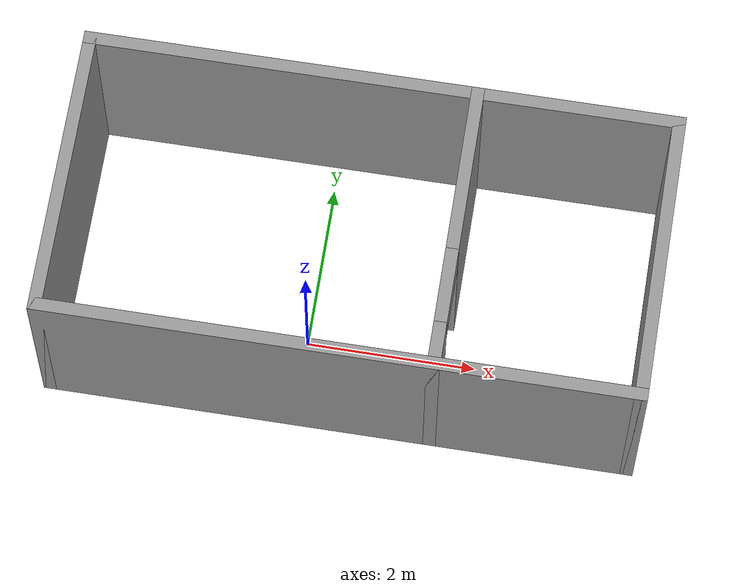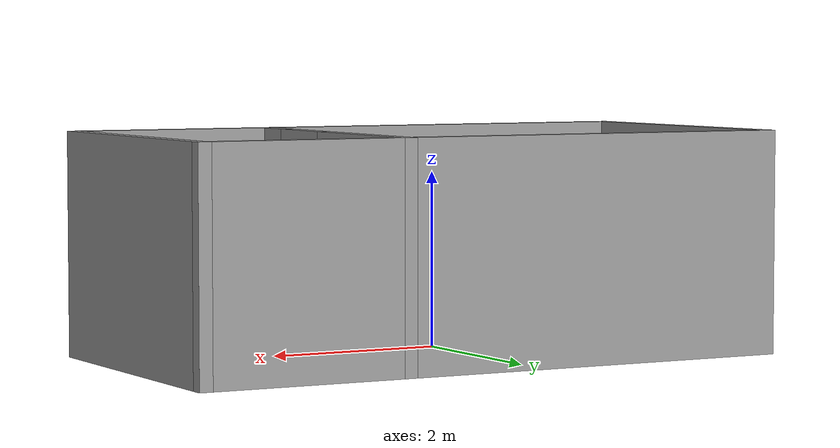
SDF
<?xml version='1.0'?>
<sdf version='1.7'>
  <model name='maze'>
    <pose>0.515 0.725 0 0 -0 0</pose>
    <link name='Wall_21'>
      <collision name='Wall_21_Collision'>
        <geometry>
          <box>
            <size>7 0.15 2.5</size>
          </box>
        </geometry>
        <pose>0 0 1.25 0 -0 0</pose>
      </collision>
      <visual name='Wall_21_Visual'>
        <pose>0 0 1.25 0 -0 0</pose>
        <geometry>
          <box>
            <size>7 0.15 2.5</size>
          </box>
        </geometry>
        <material>
          <script>
            <uri>file://media/materials/scripts/gazebo.material</uri>
            <name>Gazebo/Grey</name>
          </script>
          <ambient>1 1 1 1</ambient>
        </material>
        <meta>
          <layer>0</layer>
        </meta>
      </visual>
      <pose>0 -1.675 0 0 -0 0</pose>
    </link>
    <link name='Wall_22'>
      <collision name='Wall_22_Collision'>
        <geometry>
          <box>
            <size>3.5 0.15 2.5</size>
          </box>
        </geometry>
        <pose>0 0 1.25 0 -0 0</pose>
      </collision>
      <visual name='Wall_22_Visual'>
        <pose>0 0 1.25 0 -0 0</pose>
        <geometry>
          <box>
            <size>3.5 0.15 2.5</size>
          </box>
        </geometry>
        <material>
          <script>
            <uri>file://media/materials/scripts/gazebo.material</uri>
            <name>Gazebo/Grey</name>
          </script>
          <ambient>1 1 1 1</ambient>
        </material>
        <meta>
          <layer>0</layer>
        </meta>
      </visual>
      <pose>3.425 -0 0 0 -0 1.5708</pose>
    </link>
    <link name='Wall_23'>
      <collision name='Wall_23_Collision'>
        <geometry>
          <box>
            <size>7 0.15 2.5</size>
          </box>
        </geometry>
        <pose>0 0 1.25 0 -0 0</pose>
      </collision>
      <visual name='Wall_23_Visual'>
        <pose>0 0 1.25 0 -0 0</pose>
        <geometry>
          <box>
            <size>7 0.15 2.5</size>
          </box>
        </geometry>
        <material>
          <script>
            <uri>file://media/materials/scripts/gazebo.material</uri>
            <name>Gazebo/Grey</name>
          </script>
          <ambient>1 1 1 1</ambient>
        </material>
        <meta>
          <layer>0</layer>
        </meta>
      </visual>
      <pose>0 1.675 0 0 -0 3.14159</pose>
    </link>
    <link name='Wall_24'>
      <collision name='Wall_24_Collision'>
        <geometry>
          <box>
            <size>3.5 0.15 2.5</size>
          </box>
        </geometry>
        <pose>0 0 1.25 0 -0 0</pose>
      </collision>
      <visual name='Wall_24_Visual'>
        <pose>0 0 1.25 0 -0 0</pose>
        <geometry>
          <box>
            <size>3.5 0.15 2.5</size>
          </box>
        </geometry>
        <material>
          <script>
            <uri>file://media/materials/scripts/gazebo.material</uri>
            <name>Gazebo/Grey</name>
          </script>
          <ambient>1 1 1 1</ambient>
        </material>
        <meta>
          <layer>0</layer>
        </meta>
      </visual>
      <pose>-3.425 -0 0 0 -0 -1.5708</pose>
    </link>
    <link name='Wall_26'>
      <pose>1.095 -0 0 0 -0 -1.5708</pose>
      <visual name='Wall_26_Visual_0'>
        <pose>-0.7375 0 1.25 0 -0 0</pose>
        <geometry>
          <box>
            <size>2.025 0.15 2.5</size>
          </box>
        </geometry>
        <material>
          <script>
            <uri>file://media/materials/scripts/gazebo.material</uri>
            <name>Gazebo/Grey</name>
          </script>
          <ambient>1 1 1 1</ambient>
        </material>
        <meta>
          <layer>0</layer>
        </meta>
      </visual>
      <collision name='Wall_26_Collision_0'>
        <geometry>
          <box>
            <size>2.025 0.15 2.5</size>
          </box>
        </geometry>
        <pose>-0.7375 0 1.25 0 -0 0</pose>
      </collision>
      <visual name='Wall_26_Visual_1'>
        <pose>1.4625 0 1.25 0 -0 0</pose>
        <geometry>
          <box>
            <size>0.575 0.15 2.5</size>
          </box>
        </geometry>
        <material>
          <script>
            <uri>file://media/materials/scripts/gazebo.material</uri>
            <name>Gazebo/Grey</name>
          </script>
          <ambient>1 1 1 1</ambient>
        </material>
        <meta>
          <layer>0</layer>
        </meta>
      </visual>
      <collision name='Wall_26_Collision_1'>
        <geometry>
          <box>
            <size>0.575 0.15 2.5</size>
          </box>
        </geometry>
        <pose>1.4625 0 1.25 0 -0 0</pose>
      </collision>
      <visual name='Wall_26_Visual_2'>
        <pose>0.725 0 2.25 0 -0 0</pose>
        <geometry>
          <box>
            <size>0.9 0.15 0.5</size>
          </box>
        </geometry>
        <material>
          <script>
            <uri>file://media/materials/scripts/gazebo.material</uri>
            <name>Gazebo/Grey</name>
          </script>
          <ambient>1 1 1 1</ambient>
        </material>
        <meta>
          <layer>0</layer>
        </meta>
      </visual>
      <collision name='Wall_26_Collision_2'>
        <geometry>
          <box>
            <size>0.9 0.15 0.5</size>
          </box>
        </geometry>
        <pose>0.725 0 2.25 0 -0 0</pose>
      </collision>
    </link>
    <static>1</static>
  </model>
</sdf>
